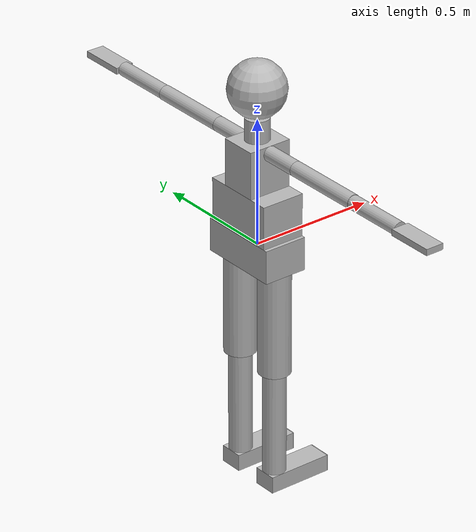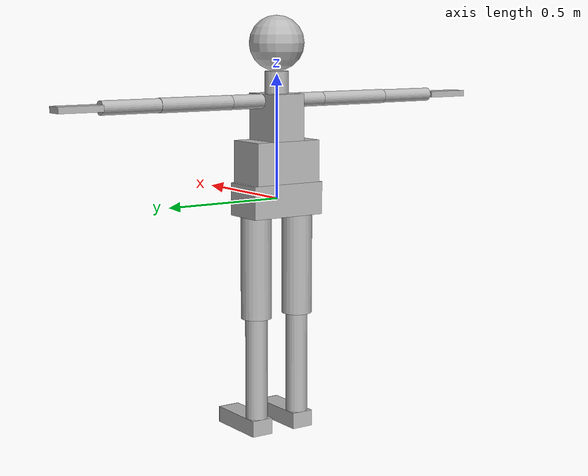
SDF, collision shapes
<sdf version='1.7'>
  <model name='HumanModel'>
    <link name='Pelvis'>
      <inertial>
        <pose>0 0 0 0 -0 0</pose>
        <mass>7.098</mass>
        <inertia>
          <ixx>0.0727621</ixx>
          <ixy>0</ixy>
          <ixz>0</ixz>
          <iyy>0.0285149</iyy>
          <iyz>0</iyz>
          <izz>0.0804766</izz>
        </inertia>
      </inertial>
      <collision name='Pelvis_collision'>
        <pose>0 0 0 0 -0 0</pose>
        <geometry>
          <box>
            <size>0.175 0.3247 0.1326</size>
          </box>
        </geometry>
      </collision>
      <visual name='Pelvis_visual'>
        <pose>0 0 0 0 -0 0</pose>
        <geometry>
          <mesh>
            <scale>0.583333 1.0303 1.0303</scale>
            <uri>model://human-gazebo/meshes/Pelvis.stl</uri>
          </mesh>
        </geometry>
      </visual>
      <visual name='Pelvis_RightRecAbd_visual_1'>
        <pose>0 0 0 0 -0 0</pose>
        <geometry>
          <mesh>
            <scale>0.583333 1.0303 1.0303</scale>
            <uri>model://human-gazebo/meshes/Pelvis_RightRecAbd.stl</uri>
          </mesh>
        </geometry>
      </visual>
      <visual name='Pelvis_RightErcSpin_visual_2'>
        <pose>0 0 0 0 -0 0</pose>
        <geometry>
          <mesh>
            <scale>0.583333 1.0303 1.0303</scale>
            <uri>model://human-gazebo/meshes/Pelvis_RightErcSpin.stl</uri>
          </mesh>
        </geometry>
      </visual>
      <visual name='Pelvis_LeftRecAbd_visual_3'>
        <pose>0 0 0 0 -0 0</pose>
        <geometry>
          <mesh>
            <scale>0.583333 1.0303 1.0303</scale>
            <uri>model://human-gazebo/meshes/Pelvis_LeftRecAbd.stl</uri>
          </mesh>
        </geometry>
      </visual>
      <visual name='Pelvis_LeftErcSpin_visual_4'>
        <pose>0 0 0 0 -0 0</pose>
        <geometry>
          <mesh>
            <scale>0.583333 1.0303 1.0303</scale>
            <uri>model://human-gazebo/meshes/Pelvis_LeftErcSpin.stl</uri>
          </mesh>
        </geometry>
      </visual>
    </link>
    <joint name='jL5S1_rotx' type='revolute'>
      <pose relative_to='Pelvis'>0 0 0.0663 0 -0 0</pose>
      <parent>Pelvis</parent>
      <child>LowerTrunk_f1</child>
      <axis>
        <xyz>1 0 0</xyz>
        <limit>
          <lower>-0.610865</lower>
          <upper>0.610865</upper>
          <effort>30</effort>
          <velocity>1</velocity>
        </limit>
        <dynamics>
          <damping>0.1</damping>
          <friction>0</friction>
          <spring_reference>0</spring_reference>
          <spring_stiffness>0</spring_stiffness>
        </dynamics>
      </axis>
    </joint>
    <link name='LowerTrunk_f1'>
      <pose relative_to='jL5S1_rotx'>0 0 0 0 -0 0</pose>
      <inertial>
        <pose>0 0 0 0 -0 0</pose>
        <mass>1e-05</mass>
        <inertia>
          <ixx>0</ixx>
          <ixy>0</ixy>
          <ixz>0</ixz>
          <iyy>0</iyy>
          <iyz>0</iyz>
          <izz>0</izz>
        </inertia>
      </inertial>
    </link>
    <joint name='jL5S1_roty' type='revolute'>
      <pose relative_to='LowerTrunk_f1'>0 0 0 0 -0 0</pose>
      <parent>LowerTrunk_f1</parent>
      <child>LowerTrunk</child>
      <axis>
        <xyz>0 1 0</xyz>
        <limit>
          <lower>-0.523599</lower>
          <upper>1.309</upper>
          <effort>30</effort>
          <velocity>1</velocity>
        </limit>
        <dynamics>
          <damping>0.1</damping>
          <friction>0</friction>
          <spring_reference>0</spring_reference>
          <spring_stiffness>0</spring_stiffness>
        </dynamics>
      </axis>
    </joint>
    <link name='LowerTrunk'>
      <pose relative_to='jL5S1_roty'>0 0 0 0 -0 0</pose>
      <inertial>
        <pose>0 0 0.085 0 -0 0</pose>
        <mass>9.294</mass>
        <inertia>
          <ixx>0.09015</ixx>
          <ixy>0</ixy>
          <ixz>0</ixz>
          <iyy>0.0461021</iyy>
          <iyz>0</iyz>
          <izz>0.091486</izz>
        </inertia>
      </inertial>
      <collision name='LowerTrunk_collision'>
        <pose>0 0 0.085 0 -0 0</pose>
        <geometry>
          <box>
            <size>0.175 0.2958 0.17</size>
          </box>
        </geometry>
      </collision>
      <visual name='LowerTrunk_visual'>
        <pose>0 0 0.085 0 -0 0</pose>
        <geometry>
          <mesh>
            <scale>0.583333 1.0303 1.0303</scale>
            <uri>model://human-gazebo/meshes/LowerTrunk.stl</uri>
          </mesh>
        </geometry>
      </visual>
      <visual name='LowerTrunk_RightRecAbd_visual_1'>
        <pose>0 0 0.085 0 -0 0</pose>
        <geometry>
          <mesh>
            <scale>0.583333 1.0303 1.0303</scale>
            <uri>model://human-gazebo/meshes/LowerTrunk_RightRecAbd.stl</uri>
          </mesh>
        </geometry>
      </visual>
      <visual name='LowerTrunk_RightErcSpin_visual_2'>
        <pose>0 0 0.085 0 -0 0</pose>
        <geometry>
          <mesh>
            <scale>0.583333 1.0303 1.0303</scale>
            <uri>model://human-gazebo/meshes/LowerTrunk_RightErcSpin.stl</uri>
          </mesh>
        </geometry>
      </visual>
      <visual name='LowerTrunk_LefttRecAbd_visual_3'>
        <pose>0 0 0.085 0 -0 0</pose>
        <geometry>
          <mesh>
            <scale>0.583333 1.0303 1.0303</scale>
            <uri>model://human-gazebo/meshes/LowerTrunk_LefttRecAbd.stl</uri>
          </mesh>
        </geometry>
      </visual>
      <visual name='LowerTrunk_LeftErcSpin_visual_4'>
        <pose>0 0 0.085 0 -0 0</pose>
        <geometry>
          <mesh>
            <scale>0.583333 1.0303 1.0303</scale>
            <uri>model://human-gazebo/meshes/LowerTrunk_LeftErcSpin.stl</uri>
          </mesh>
        </geometry>
      </visual>
    </link>
    <joint name='jT9T8_rotx' type='revolute'>
      <pose relative_to='LowerTrunk'>0 0 0.17 0 -0 0</pose>
      <parent>LowerTrunk</parent>
      <child>UpperTrunk_f1</child>
      <axis>
        <xyz>1 0 0</xyz>
        <limit>
          <lower>-0.349066</lower>
          <upper>0.349066</upper>
          <effort>30</effort>
          <velocity>1</velocity>
        </limit>
        <dynamics>
          <damping>0.1</damping>
          <friction>0</friction>
          <spring_reference>0</spring_reference>
          <spring_stiffness>0</spring_stiffness>
        </dynamics>
      </axis>
    </joint>
    <link name='UpperTrunk_f1'>
      <pose relative_to='jT9T8_rotx'>0 0 0 0 -0 0</pose>
      <inertial>
        <pose>0 0 0 0 -0 0</pose>
        <mass>1e-05</mass>
        <inertia>
          <ixx>0</ixx>
          <ixy>0</ixy>
          <ixz>0</ixz>
          <iyy>0</iyy>
          <iyz>0</iyz>
          <izz>0</izz>
        </inertia>
      </inertial>
    </link>
    <joint name='jT9T8_roty' type='revolute'>
      <pose relative_to='UpperTrunk_f1'>0 0 0 0 -0 0</pose>
      <parent>UpperTrunk_f1</parent>
      <child>UpperTrunk_f2</child>
      <axis>
        <xyz>0 1 0</xyz>
        <limit>
          <lower>-0.261799</lower>
          <upper>0.698132</upper>
          <effort>30</effort>
          <velocity>1</velocity>
        </limit>
        <dynamics>
          <damping>0.1</damping>
          <friction>0</friction>
          <spring_reference>0</spring_reference>
          <spring_stiffness>0</spring_stiffness>
        </dynamics>
      </axis>
    </joint>
    <link name='UpperTrunk_f2'>
      <pose relative_to='jT9T8_roty'>0 0 0 0 -0 0</pose>
      <inertial>
        <pose>0 0 0 0 -0 0</pose>
        <mass>1e-05</mass>
        <inertia>
          <ixx>0</ixx>
          <ixy>0</ixy>
          <ixz>0</ixz>
          <iyy>0</iyy>
          <iyz>0</iyz>
          <izz>0</izz>
        </inertia>
      </inertial>
    </link>
    <joint name='jT9T8_rotz' type='revolute'>
      <pose relative_to='UpperTrunk_f2'>0 0 0 0 -0 0</pose>
      <parent>UpperTrunk_f2</parent>
      <child>UpperTrunk</child>
      <axis>
        <xyz>0 0 1</xyz>
        <limit>
          <lower>-0.610865</lower>
          <upper>0.610865</upper>
          <effort>30</effort>
          <velocity>1</velocity>
        </limit>
        <dynamics>
          <damping>0.1</damping>
          <friction>0</friction>
          <spring_reference>0</spring_reference>
          <spring_stiffness>0</spring_stiffness>
        </dynamics>
      </axis>
    </joint>
    <link name='UpperTrunk'>
      <pose relative_to='jT9T8_rotz'>0 0 0 0 -0 0</pose>
      <inertial>
        <pose>0 0 0.0935 0 -0 0</pose>
        <mass>3.138</mass>
        <inertia>
          <ixx>0.0147772</ixx>
          <ixy>0</ixy>
          <ixz>0</ixz>
          <iyy>0.0171528</iyy>
          <iyz>0</iyz>
          <izz>0.0136413</izz>
        </inertia>
      </inertial>
      <collision name='UpperTrunk_collision'>
        <pose>0 0 0.0935 0 -0 0</pose>
        <geometry>
          <box>
            <size>0.175 0.146767 0.187</size>
          </box>
        </geometry>
      </collision>
      <visual name='UpperTrunk_visual'>
        <pose>0 0 0.0935 0 -0 0</pose>
        <geometry>
          <mesh>
            <scale>0.583333 1.0303 1.0303</scale>
            <uri>model://human-gazebo/meshes/UpperTrunk.stl</uri>
          </mesh>
        </geometry>
      </visual>
      <visual name='UpperTrunk_RightRecAbd_visual_1'>
        <pose>0 0 0.0935 0 -0 0</pose>
        <geometry>
          <mesh>
            <scale>0.583333 1.0303 1.0303</scale>
            <uri>model://human-gazebo/meshes/UpperTrunk_RightRecAbd.stl</uri>
          </mesh>
        </geometry>
      </visual>
      <visual name='UpperTrunk_RightErcSpin_visual_2'>
        <pose>0 0 0.0935 0 -0 0</pose>
        <geometry>
          <mesh>
            <scale>0.583333 1.0303 1.0303</scale>
            <uri>model://human-gazebo/meshes/UpperTrunk_RightErcSpin.stl</uri>
          </mesh>
        </geometry>
      </visual>
      <visual name='UpperTrunk_LeftRecAbd_visual_3'>
        <pose>0 0 0.0935 0 -0 0</pose>
        <geometry>
          <mesh>
            <scale>0.583333 1.0303 1.0303</scale>
            <uri>model://human-gazebo/meshes/UpperTrunk_LeftRecAbd.stl</uri>
          </mesh>
        </geometry>
      </visual>
      <visual name='UpperTrunk_LeftErcSpin_visual_4'>
        <pose>0 0 0.0935 0 -0 0</pose>
        <geometry>
          <mesh>
            <scale>0.583333 1.0303 1.0303</scale>
            <uri>model://human-gazebo/meshes/UpperTrunk_LeftErcSpin.stl</uri>
          </mesh>
        </geometry>
      </visual>
    </link>
    <joint name='jC7LeftShoulder_rotx' type='revolute'>
      <pose relative_to='UpperTrunk'>0 0.073383 0.158 0 -0 0</pose>
      <parent>UpperTrunk</parent>
      <child>LeftShoulder</child>
      <axis>
        <xyz>1 0 0</xyz>
        <limit>
          <lower>-0.0872665</lower>
          <upper>0.785398</upper>
          <effort>30</effort>
          <velocity>1</velocity>
        </limit>
        <dynamics>
          <damping>0.1</damping>
          <friction>0</friction>
          <spring_reference>0</spring_reference>
          <spring_stiffness>0</spring_stiffness>
        </dynamics>
      </axis>
    </joint>
    <link name='LeftShoulder'>
      <pose relative_to='jC7LeftShoulder_rotx'>0 0 0 0 -0 0</pose>
      <inertial>
        <pose>0 0.073383 0 1.5708 -0 0</pose>
        <mass>3.138</mass>
        <inertia>
          <ixx>0.01</ixx>
          <ixy>0</ixy>
          <ixz>0</ixz>
          <iyy>0.01</iyy>
          <iyz>0</iyz>
          <izz>0.01</izz>
        </inertia>
      </inertial>
      <collision name='LeftShoulder_collision'>
        <pose>0 0.073383 0 1.5708 -0 0</pose>
        <geometry>
          <cylinder>
            <length>0.146767</length>
            <radius>0.029</radius>
          </cylinder>
        </geometry>
      </collision>
      <visual name='LeftShoulder_visual'>
        <pose>0 0.073383 0 1.5708 -0 0</pose>
        <geometry>
          <mesh>
            <scale>0.644444 0.644444 1.0303</scale>
            <uri>model://human-gazebo/meshes/LeftShoulder.stl</uri>
          </mesh>
        </geometry>
      </visual>
    </link>
    <joint name='jLeftShoulder_rotx' type='revolute'>
      <pose relative_to='LeftShoulder'>0 0.146767 0 0 -0 0</pose>
      <parent>LeftShoulder</parent>
      <child>LeftShoulder_f1</child>
      <axis>
        <xyz>1 0 0</xyz>
        <limit>
          <lower>-1.5708</lower>
          <upper>2.35619</upper>
          <effort>30</effort>
          <velocity>1</velocity>
        </limit>
        <dynamics>
          <damping>0.1</damping>
          <friction>0</friction>
          <spring_reference>0</spring_reference>
          <spring_stiffness>0</spring_stiffness>
        </dynamics>
      </axis>
    </joint>
    <link name='LeftShoulder_f1'>
      <pose relative_to='jLeftShoulder_rotx'>0 0 0 0 -0 0</pose>
      <inertial>
        <pose>0 0 0 0 -0 0</pose>
        <mass>1e-05</mass>
        <inertia>
          <ixx>0</ixx>
          <ixy>0</ixy>
          <ixz>0</ixz>
          <iyy>0</iyy>
          <iyz>0</iyz>
          <izz>0</izz>
        </inertia>
      </inertial>
    </link>
    <joint name='jLeftShoulder_roty' type='revolute'>
      <pose relative_to='LeftShoulder_f1'>0 0 0 0 -0 0</pose>
      <parent>LeftShoulder_f1</parent>
      <child>LeftShoulder_f2</child>
      <axis>
        <xyz>0 1 0</xyz>
        <limit>
          <lower>-1.5708</lower>
          <upper>1.5708</upper>
          <effort>30</effort>
          <velocity>1</velocity>
        </limit>
        <dynamics>
          <damping>0.1</damping>
          <friction>0</friction>
          <spring_reference>0</spring_reference>
          <spring_stiffness>0</spring_stiffness>
        </dynamics>
      </axis>
    </joint>
    <link name='LeftShoulder_f2'>
      <pose relative_to='jLeftShoulder_roty'>0 0 0 0 -0 0</pose>
      <inertial>
        <pose>0 0 0 0 -0 0</pose>
        <mass>1e-05</mass>
        <inertia>
          <ixx>0</ixx>
          <ixy>0</ixy>
          <ixz>0</ixz>
          <iyy>0</iyy>
          <iyz>0</iyz>
          <izz>0</izz>
        </inertia>
      </inertial>
    </link>
    <joint name='jLeftShoulder_rotz' type='revolute'>
      <pose relative_to='LeftShoulder_f2'>0 0 0 0 -0 0</pose>
      <parent>LeftShoulder_f2</parent>
      <child>LeftUpperArm</child>
      <axis>
        <xyz>0 0 1</xyz>
        <limit>
          <lower>-3.14159</lower>
          <upper>0.785398</upper>
          <effort>30</effort>
          <velocity>1</velocity>
        </limit>
        <dynamics>
          <damping>0.1</damping>
          <friction>0</friction>
          <spring_reference>0</spring_reference>
          <spring_stiffness>0</spring_stiffness>
        </dynamics>
      </axis>
    </joint>
    <link name='LeftUpperArm'>
      <pose relative_to='jLeftShoulder_rotz'>0 0 0 0 -0 0</pose>
      <inertial>
        <pose>0 0.1581 0 1.5708 -0 0</pose>
        <mass>1.578</mass>
        <inertia>
          <ixx>0.0134795</ixx>
          <ixy>0</ixy>
          <ixz>0</ixz>
          <iyy>0.0134795</iyy>
          <iyz>-2.64698e-23</iyz>
          <izz>0.01</izz>
        </inertia>
      </inertial>
      <collision name='LeftUpperArm_collision'>
        <pose>0 0.1581 0 1.5708 -0 0</pose>
        <geometry>
          <cylinder>
            <length>0.3162</length>
            <radius>0.029</radius>
          </cylinder>
        </geometry>
      </collision>
      <visual name='LeftUpperArm_visual'>
        <pose>0 0.1581 0 1.5708 -0 0</pose>
        <geometry>
          <mesh>
            <scale>0.644444 0.644444 1.0303</scale>
            <uri>model://human-gazebo/meshes/LeftUpperArm.stl</uri>
          </mesh>
        </geometry>
      </visual>
      <visual name='LeftUpperArm_fixed_joint_lump__LeftTricBrac_visual_1'>
        <pose>0 0.1581 0 1.5708 -0 0</pose>
        <geometry>
          <mesh>
            <scale>0.644444 0.644444 1.0303</scale>
            <uri>model://human-gazebo/meshes/LeftTricBrac.stl</uri>
          </mesh>
        </geometry>
      </visual>
      <visual name='LeftUpperArm_fixed_joint_lump__LeftBicBrac_visual_2'>
        <pose>0 0.1581 0 1.5708 -0 0</pose>
        <geometry>
          <mesh>
            <scale>0.644444 0.644444 1.0303</scale>
            <uri>model://human-gazebo/meshes/LeftBicBrac.stl</uri>
          </mesh>
        </geometry>
      </visual>
    </link>
    <joint name='jLeftElbow_roty' type='revolute'>
      <pose relative_to='LeftUpperArm'>0 0.3162 0 0 -0 0</pose>
      <parent>LeftUpperArm</parent>
      <child>LeftForeArm_f1</child>
      <axis>
        <xyz>0 1 0</xyz>
        <limit>
          <lower>-1.5708</lower>
          <upper>1.48353</upper>
          <effort>30</effort>
          <velocity>1</velocity>
        </limit>
        <dynamics>
          <damping>0.1</damping>
          <friction>0</friction>
          <spring_reference>0</spring_reference>
          <spring_stiffness>0</spring_stiffness>
        </dynamics>
      </axis>
    </joint>
    <link name='LeftForeArm_f1'>
      <pose relative_to='jLeftElbow_roty'>0 0 0 0 -0 0</pose>
      <inertial>
        <pose>0 0 0 0 -0 0</pose>
        <mass>1e-05</mass>
        <inertia>
          <ixx>0</ixx>
          <ixy>0</ixy>
          <ixz>0</ixz>
          <iyy>0</iyy>
          <iyz>0</iyz>
          <izz>0</izz>
        </inertia>
      </inertial>
    </link>
    <joint name='jLeftElbow_rotz' type='revolute'>
      <pose relative_to='LeftForeArm_f1'>0 0 0 0 -0 0</pose>
      <parent>LeftForeArm_f1</parent>
      <child>LeftForeArm</child>
      <axis>
        <xyz>0 0 1</xyz>
        <limit>
          <lower>-2.53073</lower>
          <upper>0</upper>
          <effort>30</effort>
          <velocity>1</velocity>
        </limit>
        <dynamics>
          <damping>0.1</damping>
          <friction>0</friction>
          <spring_reference>0</spring_reference>
          <spring_stiffness>0</spring_stiffness>
        </dynamics>
      </axis>
    </joint>
    <link name='LeftForeArm'>
      <pose relative_to='jLeftElbow_rotz'>0 0 0 0 -0 0</pose>
      <inertial>
        <pose>0 0.1241 0 1.5708 -0 0</pose>
        <mass>0.9</mass>
        <inertia>
          <ixx>0.01</ixx>
          <ixy>0</ixy>
          <ixz>0</ixz>
          <iyy>0.01</iyy>
          <iyz>-5.9557e-23</iyz>
          <izz>0.01</izz>
        </inertia>
      </inertial>
      <collision name='LeftForeArm_collision'>
        <pose>0 0.1241 0 1.5708 -0 0</pose>
        <geometry>
          <cylinder>
            <length>0.2482</length>
            <radius>0.0275</radius>
          </cylinder>
        </geometry>
      </collision>
      <visual name='LeftForeArm_visual'>
        <pose>0 0.1241 0 1.5708 -0 0</pose>
        <geometry>
          <mesh>
            <scale>0.611111 0.611111 1.0303</scale>
            <uri>model://human-gazebo/meshes/LeftForeArm.stl</uri>
          </mesh>
        </geometry>
      </visual>
      <visual name='LeftForeArm_fixed_joint_lump__LeftFlexCarp_visual_1'>
        <pose>0 0.1241 0 1.5708 -0 0</pose>
        <geometry>
          <mesh>
            <scale>0.611111 0.611111 1.0303</scale>
            <uri>model://human-gazebo/meshes/LeftFlexCarp.stl</uri>
          </mesh>
        </geometry>
      </visual>
      <visual name='LeftForeArm_fixed_joint_lump__LeftExtCarp_visual_2'>
        <pose>0 0.1241 0 1.5708 -0 0</pose>
        <geometry>
          <mesh>
            <scale>0.611111 0.611111 1.0303</scale>
            <uri>model://human-gazebo/meshes/LeftExtCarp.stl</uri>
          </mesh>
        </geometry>
      </visual>
    </link>
    <joint name='jLeftWrist_rotx' type='revolute'>
      <pose relative_to='LeftForeArm'>0 0.2482 0 0 -0 0</pose>
      <parent>LeftForeArm</parent>
      <child>LeftHand_f1</child>
      <axis>
        <xyz>1 0 0</xyz>
        <limit>
          <lower>-1.0472</lower>
          <upper>0.872665</upper>
          <effort>30</effort>
          <velocity>1</velocity>
        </limit>
        <dynamics>
          <damping>0.1</damping>
          <friction>0</friction>
          <spring_reference>0</spring_reference>
          <spring_stiffness>0</spring_stiffness>
        </dynamics>
      </axis>
    </joint>
    <link name='LeftHand_f1'>
      <pose relative_to='jLeftWrist_rotx'>0 0 0 0 -0 0</pose>
      <inertial>
        <pose>0 0 0 0 -0 0</pose>
        <mass>1e-05</mass>
        <inertia>
          <ixx>0</ixx>
          <ixy>0</ixy>
          <ixz>0</ixz>
          <iyy>0</iyy>
          <iyz>0</iyz>
          <izz>0</izz>
        </inertia>
      </inertial>
    </link>
    <joint name='jLeftWrist_rotz' type='revolute'>
      <pose relative_to='LeftHand_f1'>0 0 0 0 -0 0</pose>
      <parent>LeftHand_f1</parent>
      <child>LeftHand</child>
      <axis>
        <xyz>0 0 1</xyz>
        <limit>
          <lower>-0.349066</lower>
          <upper>0.523599</upper>
          <effort>30</effort>
          <velocity>1</velocity>
        </limit>
        <dynamics>
          <damping>0.1</damping>
          <friction>0</friction>
          <spring_reference>0</spring_reference>
          <spring_stiffness>0</spring_stiffness>
        </dynamics>
      </axis>
    </joint>
    <link name='LeftHand'>
      <pose relative_to='jLeftWrist_rotz'>0 0 0 0 -0 0</pose>
      <inertial>
        <pose>0 0.0918 0 0 -0 0</pose>
        <mass>0.35401</mass>
        <inertia>
          <ixx>0.01</ixx>
          <ixy>0</ixy>
          <ixz>0</ixz>
          <iyy>0.01</iyy>
          <iyz>0</iyz>
          <izz>0.01</izz>
        </inertia>
      </inertial>
      <collision name='LeftHand_collision'>
        <pose>0 0.0918 0 0 -0 0</pose>
        <geometry>
          <box>
            <size>0.072 0.1836 0.025</size>
          </box>
        </geometry>
      </collision>
      <visual name='LeftHand_visual'>
        <pose>0 0.0918 0 0 -0 0</pose>
        <geometry>
          <mesh>
            <scale>0.9 1.0303 0.555556</scale>
            <uri>model://human-gazebo/meshes/LeftHand.stl</uri>
          </mesh>
        </geometry>
      </visual>
      <visual name='LeftHandCOM_visual_1'>
        <pose>0 0.0918 0 0 -0 0</pose>
        <geometry>
          <box>
            <size>0 0 0</size>
          </box>
        </geometry>
      </visual>
    </link>
    <joint name='jC7RightShoulder_rotx' type='revolute'>
      <pose relative_to='UpperTrunk'>0 -0.073383 0.158 0 -0 0</pose>
      <parent>UpperTrunk</parent>
      <child>RightShoulder</child>
      <axis>
        <xyz>1 0 0</xyz>
        <limit>
          <lower>-0.785398</lower>
          <upper>0.0872665</upper>
          <effort>30</effort>
          <velocity>1</velocity>
        </limit>
        <dynamics>
          <damping>0.1</damping>
          <friction>0</friction>
          <spring_reference>0</spring_reference>
          <spring_stiffness>0</spring_stiffness>
        </dynamics>
      </axis>
    </joint>
    <link name='RightShoulder'>
      <pose relative_to='jC7RightShoulder_rotx'>0 0 0 0 -0 0</pose>
      <inertial>
        <pose>0 -0.073383 0 1.5708 -0 0</pose>
        <mass>3.138</mass>
        <inertia>
          <ixx>0.01</ixx>
          <ixy>0</ixy>
          <ixz>0</ixz>
          <iyy>0.01</iyy>
          <iyz>0</iyz>
          <izz>0.01</izz>
        </inertia>
      </inertial>
      <collision name='RightShoulder_collision'>
        <pose>0 -0.073383 0 1.5708 -0 0</pose>
        <geometry>
          <cylinder>
            <length>0.146767</length>
            <radius>0.029</radius>
          </cylinder>
        </geometry>
      </collision>
      <visual name='RightShoulder_visual'>
        <pose>0 -0.073383 0 1.5708 -0 0</pose>
        <geometry>
          <mesh>
            <scale>0.644444 0.644444 1.0303</scale>
            <uri>model://human-gazebo/meshes/RightShoulder.stl</uri>
          </mesh>
        </geometry>
      </visual>
    </link>
    <joint name='jRightShoulder_rotx' type='revolute'>
      <pose relative_to='RightShoulder'>0 -0.146767 0 0 -0 0</pose>
      <parent>RightShoulder</parent>
      <child>RightShoulder_f1</child>
      <axis>
        <xyz>1 0 0</xyz>
        <limit>
          <lower>-2.35619</lower>
          <upper>1.5708</upper>
          <effort>30</effort>
          <velocity>1</velocity>
        </limit>
        <dynamics>
          <damping>0.1</damping>
          <friction>0</friction>
          <spring_reference>0</spring_reference>
          <spring_stiffness>0</spring_stiffness>
        </dynamics>
      </axis>
    </joint>
    <link name='RightShoulder_f1'>
      <pose relative_to='jRightShoulder_rotx'>0 0 0 0 -0 0</pose>
      <inertial>
        <pose>0 0 0 0 -0 0</pose>
        <mass>1e-05</mass>
        <inertia>
          <ixx>0</ixx>
          <ixy>0</ixy>
          <ixz>0</ixz>
          <iyy>0</iyy>
          <iyz>0</iyz>
          <izz>0</izz>
        </inertia>
      </inertial>
    </link>
    <joint name='jRightShoulder_roty' type='revolute'>
      <pose relative_to='RightShoulder_f1'>0 0 0 0 -0 0</pose>
      <parent>RightShoulder_f1</parent>
      <child>RightShoulder_f2</child>
      <axis>
        <xyz>0 1 0</xyz>
        <limit>
          <lower>-1.5708</lower>
          <upper>1.5708</upper>
          <effort>30</effort>
          <velocity>1</velocity>
        </limit>
        <dynamics>
          <damping>0.1</damping>
          <friction>0</friction>
          <spring_reference>0</spring_reference>
          <spring_stiffness>0</spring_stiffness>
        </dynamics>
      </axis>
    </joint>
    <link name='RightShoulder_f2'>
      <pose relative_to='jRightShoulder_roty'>0 0 0 0 -0 0</pose>
      <inertial>
        <pose>0 0 0 0 -0 0</pose>
        <mass>1e-05</mass>
        <inertia>
          <ixx>0</ixx>
          <ixy>0</ixy>
          <ixz>0</ixz>
          <iyy>0</iyy>
          <iyz>0</iyz>
          <izz>0</izz>
        </inertia>
      </inertial>
    </link>
    <joint name='jRightShoulder_rotz' type='revolute'>
      <pose relative_to='RightShoulder_f2'>0 0 0 0 -0 0</pose>
      <parent>RightShoulder_f2</parent>
      <child>RightUpperArm</child>
      <axis>
        <xyz>0 0 1</xyz>
        <limit>
          <lower>-0.785398</lower>
          <upper>3.14159</upper>
          <effort>30</effort>
          <velocity>1</velocity>
        </limit>
        <dynamics>
          <damping>0.1</damping>
          <friction>0</friction>
          <spring_reference>0</spring_reference>
          <spring_stiffness>0</spring_stiffness>
        </dynamics>
      </axis>
    </joint>
    <link name='RightUpperArm'>
      <pose relative_to='jRightShoulder_rotz'>0 0 0 0 -0 0</pose>
      <inertial>
        <pose>0 -0.1581 0 1.5708 -0 0</pose>
        <mass>1.578</mass>
        <inertia>
          <ixx>0.0134795</ixx>
          <ixy>0</ixy>
          <ixz>0</ixz>
          <iyy>0.0134795</iyy>
          <iyz>-2.64698e-23</iyz>
          <izz>0.01</izz>
        </inertia>
      </inertial>
      <collision name='RightUpperArm_collision'>
        <pose>0 -0.1581 0 1.5708 -0 0</pose>
        <geometry>
          <cylinder>
            <length>0.3162</length>
            <radius>0.029</radius>
          </cylinder>
        </geometry>
      </collision>
      <visual name='RightUpperArm_visual'>
        <pose>0 -0.1581 0 1.5708 -0 0</pose>
        <geometry>
          <mesh>
            <scale>0.644444 0.644444 1.0303</scale>
            <uri>model://human-gazebo/meshes/RightUpperArm.stl</uri>
          </mesh>
        </geometry>
      </visual>
      <visual name='RightUpperArm_fixed_joint_lump__RightTricBrac_visual_1'>
        <pose>0 -0.1581 0 1.5708 -0 0</pose>
        <geometry>
          <mesh>
            <scale>0.644444 0.644444 1.0303</scale>
            <uri>model://human-gazebo/meshes/RightTricBrac.stl</uri>
          </mesh>
        </geometry>
      </visual>
      <visual name='RightUpperArm_fixed_joint_lump__RightBicBrac_visual_2'>
        <pose>0 -0.1581 0 1.5708 -0 0</pose>
        <geometry>
          <mesh>
            <scale>0.644444 0.644444 1.0303</scale>
            <uri>model://human-gazebo/meshes/RightBicBrac.stl</uri>
          </mesh>
        </geometry>
      </visual>
    </link>
    <joint name='jRightElbow_roty' type='revolute'>
      <pose relative_to='RightUpperArm'>0 -0.3162 0 0 -0 0</pose>
      <parent>RightUpperArm</parent>
      <child>RightForeArm_f1</child>
      <axis>
        <xyz>0 1 0</xyz>
        <limit>
          <lower>-1.5708</lower>
          <upper>1.48353</upper>
          <effort>30</effort>
          <velocity>1</velocity>
        </limit>
        <dynamics>
          <damping>0.1</damping>
          <friction>0</friction>
          <spring_reference>0</spring_reference>
          <spring_stiffness>0</spring_stiffness>
        </dynamics>
      </axis>
    </joint>
    <link name='RightForeArm_f1'>
      <pose relative_to='jRightElbow_roty'>0 0 0 0 -0 0</pose>
      <inertial>
        <pose>0 0 0 0 -0 0</pose>
        <mass>1e-05</mass>
        <inertia>
          <ixx>0</ixx>
          <ixy>0</ixy>
          <ixz>0</ixz>
          <iyy>0</iyy>
          <iyz>0</iyz>
          <izz>0</izz>
        </inertia>
      </inertial>
    </link>
    <joint name='jRightElbow_rotz' type='revolute'>
      <pose relative_to='RightForeArm_f1'>0 0 0 0 -0 0</pose>
      <parent>RightForeArm_f1</parent>
      <child>RightForeArm</child>
      <axis>
        <xyz>0 0 1</xyz>
        <limit>
          <lower>0</lower>
          <upper>2.53073</upper>
          <effort>30</effort>
          <velocity>1</velocity>
        </limit>
        <dynamics>
          <damping>0.1</damping>
          <friction>0</friction>
          <spring_reference>0</spring_reference>
          <spring_stiffness>0</spring_stiffness>
        </dynamics>
      </axis>
    </joint>
    <link name='RightForeArm'>
      <pose relative_to='jRightElbow_rotz'>0 0 0 0 -0 0</pose>
      <inertial>
        <pose>0 -0.1241 0 1.5708 -0 0</pose>
        <mass>0.9</mass>
        <inertia>
          <ixx>0.01</ixx>
          <ixy>0</ixy>
          <ixz>0</ixz>
          <iyy>0.01</iyy>
          <iyz>-5.9557e-23</iyz>
          <izz>0.01</izz>
        </inertia>
      </inertial>
      <collision name='RightForeArm_collision'>
        <pose>0 -0.1241 0 1.5708 -0 0</pose>
        <geometry>
          <cylinder>
            <length>0.2482</length>
            <radius>0.0275</radius>
          </cylinder>
        </geometry>
      </collision>
      <visual name='RightForeArm_visual'>
        <pose>0 -0.1241 0 1.5708 -0 0</pose>
        <geometry>
          <mesh>
            <scale>0.611111 0.611111 1.0303</scale>
            <uri>model://human-gazebo/meshes/RightForeArm.stl</uri>
          </mesh>
        </geometry>
      </visual>
      <visual name='RightForeArm_fixed_joint_lump__RightFlexCarp_visual_1'>
        <pose>0 -0.1241 0 1.5708 -0 0</pose>
        <geometry>
          <mesh>
            <scale>0.611111 0.611111 1.0303</scale>
            <uri>model://human-gazebo/meshes/RightFlexCarp.stl</uri>
          </mesh>
        </geometry>
      </visual>
      <visual name='RightForeArm_fixed_joint_lump__RightExtCarp_visual_2'>
        <pose>0 -0.1241 0 1.5708 -0 0</pose>
        <geometry>
          <mesh>
            <scale>0.611111 0.611111 1.0303</scale>
            <uri>model://human-gazebo/meshes/RightExtCarp.stl</uri>
          </mesh>
        </geometry>
      </visual>
    </link>
    <joint name='jRightWrist_rotx' type='revolute'>
      <pose relative_to='RightForeArm'>0 -0.2482 0 0 -0 0</pose>
      <parent>RightForeArm</parent>
      <child>RightHand_f1</child>
      <axis>
        <xyz>1 0 0</xyz>
        <limit>
          <lower>-0.872665</lower>
          <upper>1.0472</upper>
          <effort>30</effort>
          <velocity>1</velocity>
        </limit>
        <dynamics>
          <damping>0.1</damping>
          <friction>0</friction>
          <spring_reference>0</spring_reference>
          <spring_stiffness>0</spring_stiffness>
        </dynamics>
      </axis>
    </joint>
    <link name='RightHand_f1'>
      <pose relative_to='jRightWrist_rotx'>0 0 0 0 -0 0</pose>
      <inertial>
        <pose>0 0 0 0 -0 0</pose>
        <mass>1e-05</mass>
        <inertia>
          <ixx>0</ixx>
          <ixy>0</ixy>
          <ixz>0</ixz>
          <iyy>0</iyy>
          <iyz>0</iyz>
          <izz>0</izz>
        </inertia>
      </inertial>
    </link>
    <joint name='jRightWrist_rotz' type='revolute'>
      <pose relative_to='RightHand_f1'>0 0 0 0 -0 0</pose>
      <parent>RightHand_f1</parent>
      <child>RightHand</child>
      <axis>
        <xyz>0 0 1</xyz>
        <limit>
          <lower>-0.523599</lower>
          <upper>0.349066</upper>
          <effort>30</effort>
          <velocity>1</velocity>
        </limit>
        <dynamics>
          <damping>0.1</damping>
          <friction>0</friction>
          <spring_reference>0</spring_reference>
          <spring_stiffness>0</spring_stiffness>
        </dynamics>
      </axis>
    </joint>
    <link name='RightHand'>
      <pose relative_to='jRightWrist_rotz'>0 0 0 0 -0 0</pose>
      <inertial>
        <pose>0 -0.0918 0 0 -0 0</pose>
        <mass>0.35401</mass>
        <inertia>
          <ixx>0.01</ixx>
          <ixy>0</ixy>
          <ixz>0</ixz>
          <iyy>0.01</iyy>
          <iyz>0</iyz>
          <izz>0.01</izz>
        </inertia>
      </inertial>
      <collision name='RightHand_collision'>
        <pose>0 -0.0918 0 0 -0 0</pose>
        <geometry>
          <box>
            <size>0.072 0.1836 0.025</size>
          </box>
        </geometry>
      </collision>
      <visual name='RightHand_visual'>
        <pose>0 -0.0918 0 0 -0 0</pose>
        <geometry>
          <mesh>
            <scale>0.9 1.0303 0.555556</scale>
            <uri>model://human-gazebo/meshes/RightHand.stl</uri>
          </mesh>
        </geometry>
      </visual>
      <visual name='RightHandCOM_visual_1'>
        <pose>0 -0.0918 0 0 -0 0</pose>
        <geometry>
          <box>
            <size>0 0 0</size>
          </box>
        </geometry>
      </visual>
    </link>
    <joint name='jT1C7_rotx' type='revolute'>
      <pose relative_to='UpperTrunk'>0 0 0.187 0 -0 0</pose>
      <parent>UpperTrunk</parent>
      <child>Neck_f1</child>
      <axis>
        <xyz>1 0 0</xyz>
        <limit>
          <lower>-0.610865</lower>
          <upper>0.610865</upper>
          <effort>30</effort>
          <velocity>1</velocity>
        </limit>
        <dynamics>
          <damping>0.1</damping>
          <friction>0</friction>
          <spring_reference>0</spring_reference>
          <spring_stiffness>0</spring_stiffness>
        </dynamics>
      </axis>
    </joint>
    <link name='Neck_f1'>
      <pose relative_to='jT1C7_rotx'>0 0 0 0 -0 0</pose>
      <inertial>
        <pose>0 0 0 0 -0 0</pose>
        <mass>1e-05</mass>
        <inertia>
          <ixx>0</ixx>
          <ixy>0</ixy>
          <ixz>0</ixz>
          <iyy>0</iyy>
          <iyz>0</iyz>
          <izz>0</izz>
        </inertia>
      </inertial>
    </link>
    <joint name='jT1C7_roty' type='revolute'>
      <pose relative_to='Neck_f1'>0 0 0 0 -0 0</pose>
      <parent>Neck_f1</parent>
      <child>Neck_f2</child>
      <axis>
        <xyz>0 1 0</xyz>
        <limit>
          <lower>-0.959931</lower>
          <upper>1.5708</upper>
          <effort>30</effort>
          <velocity>1</velocity>
        </limit>
        <dynamics>
          <damping>0.1</damping>
          <friction>0</friction>
          <spring_reference>0</spring_reference>
          <spring_stiffness>0</spring_stiffness>
        </dynamics>
      </axis>
    </joint>
    <link name='Neck_f2'>
      <pose relative_to='jT1C7_roty'>0 0 0 0 -0 0</pose>
      <inertial>
        <pose>0 0 0 0 -0 0</pose>
        <mass>1e-05</mass>
        <inertia>
          <ixx>0</ixx>
          <ixy>0</ixy>
          <ixz>0</ixz>
          <iyy>0</iyy>
          <iyz>0</iyz>
          <izz>0</izz>
        </inertia>
      </inertial>
    </link>
    <joint name='jT1C7_rotz' type='revolute'>
      <pose relative_to='Neck_f2'>0 0 0 0 -0 0</pose>
      <parent>Neck_f2</parent>
      <child>Neck</child>
      <axis>
        <xyz>0 0 1</xyz>
        <limit>
          <lower>-1.22173</lower>
          <upper>1.22173</upper>
          <effort>30</effort>
          <velocity>1</velocity>
        </limit>
        <dynamics>
          <damping>0.1</damping>
          <friction>0</friction>
          <spring_reference>0</spring_reference>
          <spring_stiffness>0</spring_stiffness>
        </dynamics>
      </axis>
    </joint>
    <link name='Neck'>
      <pose relative_to='jT1C7_rotz'>0 0 0 0 -0 0</pose>
      <inertial>
        <pose>0 0 0.0442 0 -0 0</pose>
        <mass>1.164</mass>
        <inertia>
          <ixx>0.01</ixx>
          <ixy>0</ixy>
          <ixz>0</ixz>
          <iyy>0.01</iyy>
          <iyz>0</iyz>
          <izz>0.01</izz>
        </inertia>
      </inertial>
      <collision name='Neck_collision'>
        <pose>0 0 0.0442 0 -0 0</pose>
        <geometry>
          <cylinder>
            <length>0.0884</length>
            <radius>0.0475</radius>
          </cylinder>
        </geometry>
      </collision>
      <visual name='Neck_visual'>
        <pose>0 0 0.0442 0 -0 0</pose>
        <geometry>
          <mesh>
            <scale>0.730769 0.730769 1.0303</scale>
            <uri>model://human-gazebo/meshes/Neck.stl</uri>
          </mesh>
        </geometry>
      </visual>
    </link>
    <joint name='jC1Head_rotx' type='revolute'>
      <pose relative_to='Neck'>0 0 0.0884 0 -0 0</pose>
      <parent>Neck</parent>
      <child>Head_f1</child>
      <axis>
        <xyz>1 0 0</xyz>
        <limit>
          <lower>-0.610865</lower>
          <upper>0.610865</upper>
          <effort>30</effort>
          <velocity>1</velocity>
        </limit>
        <dynamics>
          <damping>0.1</damping>
          <friction>0</friction>
          <spring_reference>0</spring_reference>
          <spring_stiffness>0</spring_stiffness>
        </dynamics>
      </axis>
    </joint>
    <link name='Head_f1'>
      <pose relative_to='jC1Head_rotx'>0 0 0 0 -0 0</pose>
      <inertial>
        <pose>0 0 0 0 -0 0</pose>
        <mass>1e-05</mass>
        <inertia>
          <ixx>0</ixx>
          <ixy>0</ixy>
          <ixz>0</ixz>
          <iyy>0</iyy>
          <iyz>0</iyz>
          <izz>0</izz>
        </inertia>
      </inertial>
    </link>
    <joint name='jC1Head_roty' type='revolute'>
      <pose relative_to='Head_f1'>0 0 0 0 -0 0</pose>
      <parent>Head_f1</parent>
      <child>Head</child>
      <axis>
        <xyz>0 1 0</xyz>
        <limit>
          <lower>-0.436332</lower>
          <upper>0.174533</upper>
          <effort>30</effort>
          <velocity>1</velocity>
        </limit>
        <dynamics>
          <damping>0.1</damping>
          <friction>0</friction>
          <spring_reference>0</spring_reference>
          <spring_stiffness>0</spring_stiffness>
        </dynamics>
      </axis>
    </joint>
    <link name='Head'>
      <pose relative_to='jC1Head_roty'>0 0 0 0 -0 0</pose>
      <inertial>
        <pose>0 0 0.1105 0 -0 0</pose>
        <mass>2.922</mass>
        <inertia>
          <ixx>0.0142713</ixx>
          <ixy>0</ixy>
          <ixz>0</ixz>
          <iyy>0.0142713</iyy>
          <iyz>0</iyz>
          <izz>0.0142713</izz>
        </inertia>
      </inertial>
      <collision name='Head_collision'>
        <pose>0 0 0.1105 0 -0 0</pose>
        <geometry>
          <sphere>
            <radius>0.1105</radius>
          </sphere>
        </geometry>
      </collision>
      <visual name='Head_visual'>
        <pose>0 0 0.1105 0 -0 0</pose>
        <geometry>
          <mesh>
            <scale>1.0303 1.0303 1.0303</scale>
            <uri>model://human-gazebo/meshes/Head.stl</uri>
          </mesh>
        </geometry>
      </visual>
    </link>
    <joint name='jLeftHip_rotx' type='revolute'>
      <pose relative_to='Pelvis'>0 0.09985 -0.0663 0 -0 0</pose>
      <parent>Pelvis</parent>
      <child>LeftUpperLeg_f1</child>
      <axis>
        <xyz>1 0 0</xyz>
        <limit>
          <lower>-0.523599</lower>
          <upper>0.785398</upper>
          <effort>30</effort>
          <velocity>1</velocity>
        </limit>
        <dynamics>
          <damping>0.1</damping>
          <friction>0</friction>
          <spring_reference>0</spring_reference>
          <spring_stiffness>0</spring_stiffness>
        </dynamics>
      </axis>
    </joint>
    <link name='LeftUpperLeg_f1'>
      <pose relative_to='jLeftHip_rotx'>0 0 0 0 -0 0</pose>
      <inertial>
        <pose>0 0 0 0 -0 0</pose>
        <mass>1e-05</mass>
        <inertia>
          <ixx>0</ixx>
          <ixy>0</ixy>
          <ixz>0</ixz>
          <iyy>0</iyy>
          <iyz>0</iyz>
          <izz>0</izz>
        </inertia>
      </inertial>
    </link>
    <joint name='jLeftHip_roty' type='revolute'>
      <pose relative_to='LeftUpperLeg_f1'>0 0 0 0 -0 0</pose>
      <parent>LeftUpperLeg_f1</parent>
      <child>LeftUpperLeg_f2</child>
      <axis>
        <xyz>0 1 0</xyz>
        <limit>
          <lower>-2.0944</lower>
          <upper>0.261799</upper>
          <effort>30</effort>
          <velocity>1</velocity>
        </limit>
        <dynamics>
          <damping>0.1</damping>
          <friction>0</friction>
          <spring_reference>0</spring_reference>
          <spring_stiffness>0</spring_stiffness>
        </dynamics>
      </axis>
    </joint>
    <link name='LeftUpperLeg_f2'>
      <pose relative_to='jLeftHip_roty'>0 0 0 0 -0 0</pose>
      <inertial>
        <pose>0 0 0 0 -0 0</pose>
        <mass>1e-05</mass>
        <inertia>
          <ixx>0</ixx>
          <ixy>0</ixy>
          <ixz>0</ixz>
          <iyy>0</iyy>
          <iyz>0</iyz>
          <izz>0</izz>
        </inertia>
      </inertial>
    </link>
    <joint name='jLeftHip_rotz' type='revolute'>
      <pose relative_to='LeftUpperLeg_f2'>0 0 0 0 -0 0</pose>
      <parent>LeftUpperLeg_f2</parent>
      <child>LeftUpperLeg</child>
      <axis>
        <xyz>0 0 1</xyz>
        <limit>
          <lower>-0.785398</lower>
          <upper>0.785398</upper>
          <effort>30</effort>
          <velocity>1</velocity>
        </limit>
        <dynamics>
          <damping>0.1</damping>
          <friction>0</friction>
          <spring_reference>0</spring_reference>
          <spring_stiffness>0</spring_stiffness>
        </dynamics>
      </axis>
    </joint>
    <link name='LeftUpperLeg'>
      <pose relative_to='jLeftHip_rotz'>0 0 0 0 -0 0</pose>
      <inertial>
        <pose>0 0 -0.20825 0 -0 0</pose>
        <mass>8.682</mass>
        <inertia>
          <ixx>0.133986</ixx>
          <ixy>0</ixy>
          <ixz>0</ixz>
          <iyy>0.133986</iyy>
          <iyz>0</iyz>
          <izz>0.016957</izz>
        </inertia>
      </inertial>
      <collision name='LeftUpperLeg_collision'>
        <pose>0 0 -0.20825 0 -0 0</pose>
        <geometry>
          <cylinder>
            <length>0.4165</length>
            <radius>0.0625</radius>
          </cylinder>
        </geometry>
      </collision>
      <visual name='LeftUpperLeg_visual'>
        <pose>0 0 -0.20825 0 -0 0</pose>
        <geometry>
          <mesh>
            <scale>0.833333 0.833333 1.0303</scale>
            <uri>model://human-gazebo/meshes/LeftUpperLeg.stl</uri>
          </mesh>
        </geometry>
      </visual>
      <visual name='LeftUpperLeg_fixed_joint_lump__LeftRecFem_visual_1'>
        <pose>0 0 -0.20825 0 -0 0</pose>
        <geometry>
          <mesh>
            <scale>0.833333 0.833333 1.0303</scale>
            <uri>model://human-gazebo/meshes/LeftRecFem.stl</uri>
          </mesh>
        </geometry>
      </visual>
      <visual name='LeftUpperLeg_fixed_joint_lump__LeftBicFem_visual_2'>
        <pose>0 0 -0.20825 0 -0 0</pose>
        <geometry>
          <mesh>
            <scale>0.833333 0.833333 1.0303</scale>
            <uri>model://human-gazebo/meshes/LeftBicFem.stl</uri>
          </mesh>
        </geometry>
      </visual>
    </link>
    <joint name='jLeftKnee_roty' type='revolute'>
      <pose relative_to='LeftUpperLeg'>0 0 -0.4165 0 -0 0</pose>
      <parent>LeftUpperLeg</parent>
      <child>LeftLowerLeg_f1</child>
      <axis>
        <xyz>0 1 0</xyz>
        <limit>
          <lower>0</lower>
          <upper>2.35619</upper>
          <effort>30</effort>
          <velocity>1</velocity>
        </limit>
        <dynamics>
          <damping>0.1</damping>
          <friction>0</friction>
          <spring_reference>0</spring_reference>
          <spring_stiffness>0</spring_stiffness>
        </dynamics>
      </axis>
    </joint>
    <link name='LeftLowerLeg_f1'>
      <pose relative_to='jLeftKnee_roty'>0 0 0 0 -0 0</pose>
      <inertial>
        <pose>0 0 0 0 -0 0</pose>
        <mass>1e-05</mass>
        <inertia>
          <ixx>0</ixx>
          <ixy>0</ixy>
          <ixz>0</ixz>
          <iyy>0</iyy>
          <iyz>0</iyz>
          <izz>0</izz>
        </inertia>
      </inertial>
    </link>
    <joint name='jLeftKnee_rotz' type='revolute'>
      <pose relative_to='LeftLowerLeg_f1'>0 0 0 0 -0 0</pose>
      <parent>LeftLowerLeg_f1</parent>
      <child>LeftLowerLeg</child>
      <axis>
        <xyz>0 0 1</xyz>
        <limit>
          <lower>-0.523599</lower>
          <upper>0.698132</upper>
          <effort>30</effort>
          <velocity>1</velocity>
        </limit>
        <dynamics>
          <damping>0.1</damping>
          <friction>0</friction>
          <spring_reference>0</spring_reference>
          <spring_stiffness>0</spring_stiffness>
        </dynamics>
      </axis>
    </joint>
    <link name='LeftLowerLeg'>
      <pose relative_to='jLeftKnee_rotz'>0 0 0 0 -0 0</pose>
      <inertial>
        <pose>0 0 -0.2091 0 -0 0</pose>
        <mass>2.742</mass>
        <inertia>
          <ixx>0.0413508</ixx>
          <ixy>0</ixy>
          <ixz>0</ixz>
          <iyy>0.0413508</iyy>
          <iyz>0</iyz>
          <izz>0.01</izz>
        </inertia>
      </inertial>
      <collision name='LeftLowerLeg_collision'>
        <pose>0 0 -0.2091 0 -0 0</pose>
        <geometry>
          <cylinder>
            <length>0.4182</length>
            <radius>0.045</radius>
          </cylinder>
        </geometry>
      </collision>
      <visual name='LeftLowerLeg_visual'>
        <pose>0 0 -0.2091 0 -0 0</pose>
        <geometry>
          <mesh>
            <scale>0.782609 0.782609 1.0303</scale>
            <uri>model://human-gazebo/meshes/LeftLowerLeg.stl</uri>
          </mesh>
        </geometry>
      </visual>
      <visual name='LeftLowerLeg_fixed_joint_lump__LeftTibAnt_visual_1'>
        <pose>0 0 -0.2091 0 -0 0</pose>
        <geometry>
          <mesh>
            <scale>0.782609 0.782609 1.0303</scale>
            <uri>model://human-gazebo/meshes/LeftTibAnt.stl</uri>
          </mesh>
        </geometry>
      </visual>
      <visual name='LeftLowerLeg_fixed_joint_lump__LeftGasMed_visual_2'>
        <pose>0 0 -0.2091 0 -0 0</pose>
        <geometry>
          <mesh>
            <scale>0.782609 0.782609 1.0303</scale>
            <uri>model://human-gazebo/meshes/LeftGasMed.stl</uri>
          </mesh>
        </geometry>
      </visual>
      <visual name='LeftLowerLeg_fixed_joint_lump__LeftGasLat_visual_3'>
        <pose>0 0 -0.2091 0 -0 0</pose>
        <geometry>
          <mesh>
            <scale>0.782609 0.782609 1.0303</scale>
            <uri>model://human-gazebo/meshes/LeftGasLat.stl</uri>
          </mesh>
        </geometry>
      </visual>
    </link>
    <joint name='jLeftAnkle_rotx' type='revolute'>
      <pose relative_to='LeftLowerLeg'>0 0 -0.4182 0 -0 0</pose>
      <parent>LeftLowerLeg</parent>
      <child>LeftFoot_f1</child>
      <axis>
        <xyz>1 0 0</xyz>
        <limit>
          <lower>-0.785398</lower>
          <upper>0.610865</upper>
          <effort>30</effort>
          <velocity>1</velocity>
        </limit>
        <dynamics>
          <damping>0.1</damping>
          <friction>0</friction>
          <spring_reference>0</spring_reference>
          <spring_stiffness>0</spring_stiffness>
        </dynamics>
      </axis>
    </joint>
    <link name='LeftFoot_f1'>
      <pose relative_to='jLeftAnkle_rotx'>0 0 0 0 -0 0</pose>
      <inertial>
        <pose>0 0 0 0 -0 0</pose>
        <mass>1e-05</mass>
        <inertia>
          <ixx>0</ixx>
          <ixy>0</ixy>
          <ixz>0</ixz>
          <iyy>0</iyy>
          <iyz>0</iyz>
          <izz>0</izz>
        </inertia>
      </inertial>
    </link>
    <joint name='jLeftAnkle_roty' type='revolute'>
      <pose relative_to='LeftFoot_f1'>0 0 0 0 -0 0</pose>
      <parent>LeftFoot_f1</parent>
      <child>LeftFoot_f2</child>
      <axis>
        <xyz>0 1 0</xyz>
        <limit>
          <lower>-0.523599</lower>
          <upper>0.872665</upper>
          <effort>30</effort>
          <velocity>1</velocity>
        </limit>
        <dynamics>
          <damping>0.1</damping>
          <friction>0</friction>
          <spring_reference>0</spring_reference>
          <spring_stiffness>0</spring_stiffness>
        </dynamics>
      </axis>
    </joint>
    <link name='LeftFoot_f2'>
      <pose relative_to='jLeftAnkle_roty'>0 0 0 0 -0 0</pose>
      <inertial>
        <pose>0 0 0 0 -0 0</pose>
        <mass>1e-05</mass>
        <inertia>
          <ixx>0</ixx>
          <ixy>0</ixy>
          <ixz>0</ixz>
          <iyy>0</iyy>
          <iyz>0</iyz>
          <izz>0</izz>
        </inertia>
      </inertial>
    </link>
    <joint name='jLeftAnkle_rotz' type='revolute'>
      <pose relative_to='LeftFoot_f2'>0 0 0 0 -0 0</pose>
      <parent>LeftFoot_f2</parent>
      <child>LeftFoot</child>
      <axis>
        <xyz>0 0 1</xyz>
        <limit>
          <lower>-0.872665</lower>
          <upper>0.436332</upper>
          <effort>30</effort>
          <velocity>1</velocity>
        </limit>
        <dynamics>
          <damping>0.1</damping>
          <friction>0</friction>
          <spring_reference>0</spring_reference>
          <spring_stiffness>0</spring_stiffness>
        </dynamics>
      </axis>
    </joint>
    <link name='LeftFoot'>
      <pose relative_to='jLeftAnkle_rotz'>0 0 0 0 -0 0</pose>
      <inertial>
        <pose>0.084199 0 -0.033151 0 -0 0</pose>
        <mass>0.79003</mass>
        <inertia>
          <ixx>0.0100001</ixx>
          <ixy>0</ixy>
          <ixz>-4.16063e-08</ixz>
          <iyy>0.0100001</iyy>
          <iyz>0</iyz>
          <izz>0.01</izz>
        </inertia>
      </inertial>
      <collision name='LeftFoot_collision'>
        <pose>0.0842 0 -0.03315 0 -0 0</pose>
        <geometry>
          <box>
            <size>0.2584 0.0935 0.0663</size>
          </box>
        </geometry>
      </collision>
      <visual name='LeftFoot_visual'>
        <pose>0.0842 0 -0.03315 0 -0 0</pose>
        <geometry>
          <mesh>
            <scale>1.0303 1.0303 1.0303</scale>
            <uri>model://human-gazebo/meshes/LeftFoot.stl</uri>
          </mesh>
        </geometry>
      </visual>
      <visual name='LeftFoot_fixed_joint_lump__LeftFTSensor_visual_1'>
        <pose>0.037 0 -0.1213 0 -0 0</pose>
        <geometry>
          <box>
            <size>0 0 0</size>
          </box>
        </geometry>
      </visual>
    </link>
    <joint name='jLeftBallFoot_roty' type='revolute'>
      <pose relative_to='LeftFoot'>0.214692 0 -0.03315 0 -0 0</pose>
      <parent>LeftFoot</parent>
      <child>LeftToe</child>
      <axis>
        <xyz>0 1 0</xyz>
        <limit>
          <lower>-0.174533</lower>
          <upper>1.5708</upper>
          <effort>30</effort>
          <velocity>1</velocity>
        </limit>
        <dynamics>
          <damping>0.1</damping>
          <friction>0</friction>
          <spring_reference>0</spring_reference>
          <spring_stiffness>0</spring_stiffness>
        </dynamics>
      </axis>
    </joint>
    <link name='LeftToe'>
      <pose relative_to='jLeftBallFoot_roty'>0 0 0 0 -0 0</pose>
      <inertial>
        <pose>0 0 0 0 -0 0</pose>
        <mass>0.00798</mass>
        <inertia>
          <ixx>0.01</ixx>
          <ixy>0</ixy>
          <ixz>0</ixz>
          <iyy>0.01</iyy>
          <iyz>0</iyz>
          <izz>0.01</izz>
        </inertia>
      </inertial>
      <collision name='LeftToe_collision'>
        <pose>0 0 0 0 -0 0</pose>
        <geometry>
          <box>
            <size>0.002584 0.0935 0.0663</size>
          </box>
        </geometry>
      </collision>
      <visual name='LeftToe_visual'>
        <pose>0 0 0 0 -0 0</pose>
        <geometry>
          <mesh>
            <scale>1.0303 1.0303 1.0303</scale>
            <uri>model://human-gazebo/meshes/LeftToe.stl</uri>
          </mesh>
        </geometry>
      </visual>
    </link>
    <joint name='jRightHip_rotx' type='revolute'>
      <pose relative_to='Pelvis'>0 -0.09985 -0.0663 0 -0 0</pose>
      <parent>Pelvis</parent>
      <child>RightUpperLeg_f1</child>
      <axis>
        <xyz>1 0 0</xyz>
        <limit>
          <lower>-0.785398</lower>
          <upper>0.523599</upper>
          <effort>30</effort>
          <velocity>1</velocity>
        </limit>
        <dynamics>
          <damping>0.1</damping>
          <friction>0</friction>
          <spring_reference>0</spring_reference>
          <spring_stiffness>0</spring_stiffness>
        </dynamics>
      </axis>
    </joint>
    <link name='RightUpperLeg_f1'>
      <pose relative_to='jRightHip_rotx'>0 0 0 0 -0 0</pose>
      <inertial>
        <pose>0 0 0 0 -0 0</pose>
        <mass>1e-05</mass>
        <inertia>
          <ixx>0</ixx>
          <ixy>0</ixy>
          <ixz>0</ixz>
          <iyy>0</iyy>
          <iyz>0</iyz>
          <izz>0</izz>
        </inertia>
      </inertial>
    </link>
    <joint name='jRightHip_roty' type='revolute'>
      <pose relative_to='RightUpperLeg_f1'>0 0 0 0 -0 0</pose>
      <parent>RightUpperLeg_f1</parent>
      <child>RightUpperLeg_f2</child>
      <axis>
        <xyz>0 1 0</xyz>
        <limit>
          <lower>-2.0944</lower>
          <upper>0.261799</upper>
          <effort>30</effort>
          <velocity>1</velocity>
        </limit>
        <dynamics>
          <damping>0.1</damping>
          <friction>0</friction>
          <spring_reference>0</spring_reference>
          <spring_stiffness>0</spring_stiffness>
        </dynamics>
      </axis>
    </joint>
    <link name='RightUpperLeg_f2'>
      <pose relative_to='jRightHip_roty'>0 0 0 0 -0 0</pose>
      <inertial>
        <pose>0 0 0 0 -0 0</pose>
        <mass>1e-05</mass>
        <inertia>
          <ixx>0</ixx>
          <ixy>0</ixy>
          <ixz>0</ixz>
          <iyy>0</iyy>
          <iyz>0</iyz>
          <izz>0</izz>
        </inertia>
      </inertial>
    </link>
    <joint name='jRightHip_rotz' type='revolute'>
      <pose relative_to='RightUpperLeg_f2'>0 0 0 0 -0 0</pose>
      <parent>RightUpperLeg_f2</parent>
      <child>RightUpperLeg</child>
      <axis>
        <xyz>0 0 1</xyz>
        <limit>
          <lower>-0.785398</lower>
          <upper>0.785398</upper>
          <effort>30</effort>
          <velocity>1</velocity>
        </limit>
        <dynamics>
          <damping>0.1</damping>
          <friction>0</friction>
          <spring_reference>0</spring_reference>
          <spring_stiffness>0</spring_stiffness>
        </dynamics>
      </axis>
    </joint>
    <link name='RightUpperLeg'>
      <pose relative_to='jRightHip_rotz'>0 0 0 0 -0 0</pose>
      <inertial>
        <pose>0 0 -0.20825 0 -0 0</pose>
        <mass>8.682</mass>
        <inertia>
          <ixx>0.133986</ixx>
          <ixy>0</ixy>
          <ixz>0</ixz>
          <iyy>0.133986</iyy>
          <iyz>0</iyz>
          <izz>0.016957</izz>
        </inertia>
      </inertial>
      <collision name='RightUpperLeg_collision'>
        <pose>0 0 -0.20825 0 -0 0</pose>
        <geometry>
          <cylinder>
            <length>0.4165</length>
            <radius>0.0625</radius>
          </cylinder>
        </geometry>
      </collision>
      <visual name='RightUpperLeg_visual'>
        <pose>0 0 -0.20825 0 -0 0</pose>
        <geometry>
          <mesh>
            <scale>0.833333 0.833333 1.0303</scale>
            <uri>model://human-gazebo/meshes/RightUpperLeg.stl</uri>
          </mesh>
        </geometry>
      </visual>
      <visual name='RightUpperLeg_fixed_joint_lump__RightRecFem_visual_1'>
        <pose>0 0 -0.20825 0 -0 0</pose>
        <geometry>
          <mesh>
            <scale>0.833333 0.833333 1.0303</scale>
            <uri>model://human-gazebo/meshes/RightRecFem.stl</uri>
          </mesh>
        </geometry>
      </visual>
      <visual name='RightUpperLeg_fixed_joint_lump__RightBicFem_visual_2'>
        <pose>0 0 -0.20825 0 -0 0</pose>
        <geometry>
          <mesh>
            <scale>0.833333 0.833333 1.0303</scale>
            <uri>model://human-gazebo/meshes/RightBicFem.stl</uri>
          </mesh>
        </geometry>
      </visual>
    </link>
    <joint name='jRightKnee_roty' type='revolute'>
      <pose relative_to='RightUpperLeg'>0 0 -0.4165 0 -0 0</pose>
      <parent>RightUpperLeg</parent>
      <child>RightLowerLeg_f1</child>
      <axis>
        <xyz>0 1 0</xyz>
        <limit>
          <lower>0</lower>
          <upper>2.35619</upper>
          <effort>30</effort>
          <velocity>1</velocity>
        </limit>
        <dynamics>
          <damping>0.1</damping>
          <friction>0</friction>
          <spring_reference>0</spring_reference>
          <spring_stiffness>0</spring_stiffness>
        </dynamics>
      </axis>
    </joint>
    <link name='RightLowerLeg_f1'>
      <pose relative_to='jRightKnee_roty'>0 0 0 0 -0 0</pose>
      <inertial>
        <pose>0 0 0 0 -0 0</pose>
        <mass>1e-05</mass>
        <inertia>
          <ixx>0</ixx>
          <ixy>0</ixy>
          <ixz>0</ixz>
          <iyy>0</iyy>
          <iyz>0</iyz>
          <izz>0</izz>
        </inertia>
      </inertial>
    </link>
    <joint name='jRightKnee_rotz' type='revolute'>
      <pose relative_to='RightLowerLeg_f1'>0 0 0 0 -0 0</pose>
      <parent>RightLowerLeg_f1</parent>
      <child>RightLowerLeg</child>
      <axis>
        <xyz>0 0 1</xyz>
        <limit>
          <lower>-0.698132</lower>
          <upper>0.523599</upper>
          <effort>30</effort>
          <velocity>1</velocity>
        </limit>
        <dynamics>
          <damping>0.1</damping>
          <friction>0</friction>
          <spring_reference>0</spring_reference>
          <spring_stiffness>0</spring_stiffness>
        </dynamics>
      </axis>
    </joint>
    <link name='RightLowerLeg'>
      <pose relative_to='jRightKnee_rotz'>0 0 0 0 -0 0</pose>
      <inertial>
        <pose>0 0 -0.2091 0 -0 0</pose>
        <mass>2.742</mass>
        <inertia>
          <ixx>0.0413508</ixx>
          <ixy>0</ixy>
          <ixz>0</ixz>
          <iyy>0.0413508</iyy>
          <iyz>0</iyz>
          <izz>0.01</izz>
        </inertia>
      </inertial>
      <collision name='RightLowerLeg_collision'>
        <pose>0 0 -0.2091 0 -0 0</pose>
        <geometry>
          <cylinder>
            <length>0.4182</length>
            <radius>0.045</radius>
          </cylinder>
        </geometry>
      </collision>
      <visual name='RightLowerLeg_visual'>
        <pose>0 0 -0.2091 0 -0 0</pose>
        <geometry>
          <mesh>
            <scale>0.782609 0.782609 1.0303</scale>
            <uri>model://human-gazebo/meshes/RightLowerLeg.stl</uri>
          </mesh>
        </geometry>
      </visual>
      <visual name='RightLowerLeg_fixed_joint_lump__RightTibAnt_visual_1'>
        <pose>0 0 -0.2091 0 -0 0</pose>
        <geometry>
          <mesh>
            <scale>0.782609 0.782609 1.0303</scale>
            <uri>model://human-gazebo/meshes/RightTibAnt.stl</uri>
          </mesh>
        </geometry>
      </visual>
      <visual name='RightLowerLeg_fixed_joint_lump__RightGasMed_visual_2'>
        <pose>0 0 -0.2091 0 -0 0</pose>
        <geometry>
          <mesh>
            <scale>0.782609 0.782609 1.0303</scale>
            <uri>model://human-gazebo/meshes/RightGasMed.stl</uri>
          </mesh>
        </geometry>
      </visual>
      <visual name='RightLowerLeg_fixed_joint_lump__RightGasLat_visual_3'>
        <pose>0 0 -0.2091 0 -0 0</pose>
        <geometry>
          <mesh>
            <scale>0.782609 0.782609 1.0303</scale>
            <uri>model://human-gazebo/meshes/RightGasLat.stl</uri>
          </mesh>
        </geometry>
      </visual>
    </link>
    <joint name='jRightAnkle_rotx' type='revolute'>
      <pose relative_to='RightLowerLeg'>0 0 -0.4182 0 -0 0</pose>
      <parent>RightLowerLeg</parent>
      <child>RightFoot_f1</child>
      <axis>
        <xyz>1 0 0</xyz>
        <limit>
          <lower>-0.610865</lower>
          <upper>0.785398</upper>
          <effort>30</effort>
          <velocity>1</velocity>
        </limit>
        <dynamics>
          <damping>0.1</damping>
          <friction>0</friction>
          <spring_reference>0</spring_reference>
          <spring_stiffness>0</spring_stiffness>
        </dynamics>
      </axis>
    </joint>
    <link name='RightFoot_f1'>
      <pose relative_to='jRightAnkle_rotx'>0 0 0 0 -0 0</pose>
      <inertial>
        <pose>0 0 0 0 -0 0</pose>
        <mass>1e-05</mass>
        <inertia>
          <ixx>0</ixx>
          <ixy>0</ixy>
          <ixz>0</ixz>
          <iyy>0</iyy>
          <iyz>0</iyz>
          <izz>0</izz>
        </inertia>
      </inertial>
    </link>
    <joint name='jRightAnkle_roty' type='revolute'>
      <pose relative_to='RightFoot_f1'>0 0 0 0 -0 0</pose>
      <parent>RightFoot_f1</parent>
      <child>RightFoot_f2</child>
      <axis>
        <xyz>0 1 0</xyz>
        <limit>
          <lower>-0.523599</lower>
          <upper>0.872665</upper>
          <effort>30</effort>
          <velocity>1</velocity>
        </limit>
        <dynamics>
          <damping>0.1</damping>
          <friction>0</friction>
          <spring_reference>0</spring_reference>
          <spring_stiffness>0</spring_stiffness>
        </dynamics>
      </axis>
    </joint>
    <link name='RightFoot_f2'>
      <pose relative_to='jRightAnkle_roty'>0 0 0 0 -0 0</pose>
      <inertial>
        <pose>0 0 0 0 -0 0</pose>
        <mass>1e-05</mass>
        <inertia>
          <ixx>0</ixx>
          <ixy>0</ixy>
          <ixz>0</ixz>
          <iyy>0</iyy>
          <iyz>0</iyz>
          <izz>0</izz>
        </inertia>
      </inertial>
    </link>
    <joint name='jRightAnkle_rotz' type='revolute'>
      <pose relative_to='RightFoot_f2'>0 0 0 0 -0 0</pose>
      <parent>RightFoot_f2</parent>
      <child>RightFoot</child>
      <axis>
        <xyz>0 0 1</xyz>
        <limit>
          <lower>-0.436332</lower>
          <upper>0.872665</upper>
          <effort>30</effort>
          <velocity>1</velocity>
        </limit>
        <dynamics>
          <damping>0.1</damping>
          <friction>0</friction>
          <spring_reference>0</spring_reference>
          <spring_stiffness>0</spring_stiffness>
        </dynamics>
      </axis>
    </joint>
    <link name='RightFoot'>
      <pose relative_to='jRightAnkle_rotz'>0 0 0 0 -0 0</pose>
      <inertial>
        <pose>0.084199 0 -0.033151 0 -0 0</pose>
        <mass>0.79003</mass>
        <inertia>
          <ixx>0.0100001</ixx>
          <ixy>0</ixy>
          <ixz>-4.16063e-08</ixz>
          <iyy>0.0100001</iyy>
          <iyz>0</iyz>
          <izz>0.01</izz>
        </inertia>
      </inertial>
      <collision name='RightFoot_collision'>
        <pose>0.0842 0 -0.03315 0 -0 0</pose>
        <geometry>
          <box>
            <size>0.2584 0.0935 0.0663</size>
          </box>
        </geometry>
      </collision>
      <visual name='RightFoot_visual'>
        <pose>0.0842 0 -0.03315 0 -0 0</pose>
        <geometry>
          <mesh>
            <scale>1.0303 1.0303 1.0303</scale>
            <uri>model://human-gazebo/meshes/RightFoot.stl</uri>
          </mesh>
        </geometry>
      </visual>
      <visual name='RightFoot_fixed_joint_lump__RightFTSensor_visual_1'>
        <pose>0.037 0 -0.1213 0 -0 0</pose>
        <geometry>
          <box>
            <size>0 0 0</size>
          </box>
        </geometry>
      </visual>
    </link>
    <joint name='jRightBallFoot_roty' type='revolute'>
      <pose relative_to='RightFoot'>0.214692 0 -0.03315 0 -0 0</pose>
      <parent>RightFoot</parent>
      <child>RightToe</child>
      <axis>
        <xyz>0 1 0</xyz>
        <limit>
          <lower>-0.174533</lower>
          <upper>1.5708</upper>
          <effort>30</effort>
          <velocity>1</velocity>
        </limit>
        <dynamics>
          <damping>0.1</damping>
          <friction>0</friction>
          <spring_reference>0</spring_reference>
          <spring_stiffness>0</spring_stiffness>
        </dynamics>
      </axis>
    </joint>
    <link name='RightToe'>
      <pose relative_to='jRightBallFoot_roty'>0 0 0 0 -0 0</pose>
      <inertial>
        <pose>0 0 0 0 -0 0</pose>
        <mass>0.00798</mass>
        <inertia>
          <ixx>0.01</ixx>
          <ixy>0</ixy>
          <ixz>0</ixz>
          <iyy>0.01</iyy>
          <iyz>0</iyz>
          <izz>0.01</izz>
        </inertia>
      </inertial>
      <collision name='RightToe_collision'>
        <pose>0 0 0 0 -0 0</pose>
        <geometry>
          <box>
            <size>0.002584 0.0935 0.0663</size>
          </box>
        </geometry>
      </collision>
      <visual name='RightToe_visual'>
        <pose>0 0 0 0 -0 0</pose>
        <geometry>
          <mesh>
            <scale>1.0303 1.0303 1.0303</scale>
            <uri>model://human-gazebo/meshes/RightToe.stl</uri>
          </mesh>
        </geometry>
      </visual>
    </link>
  </model>
</sdf>
